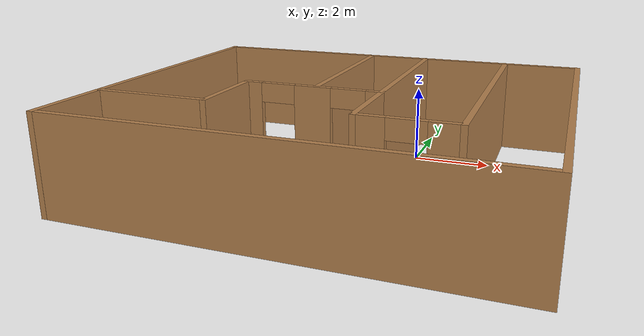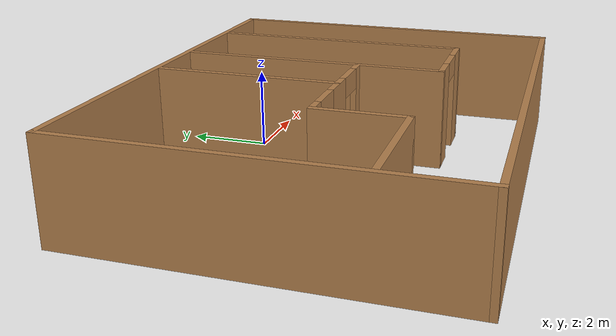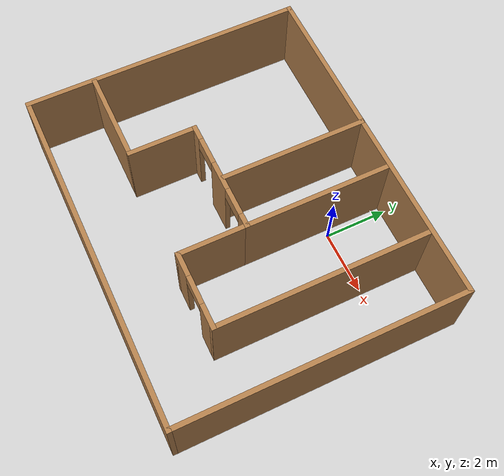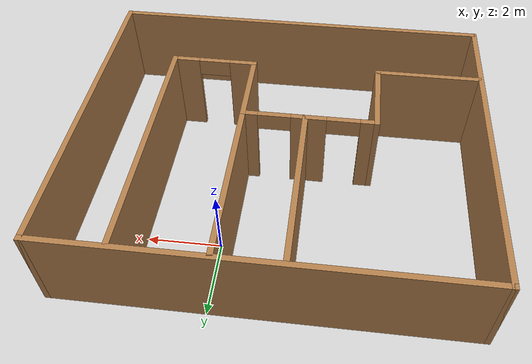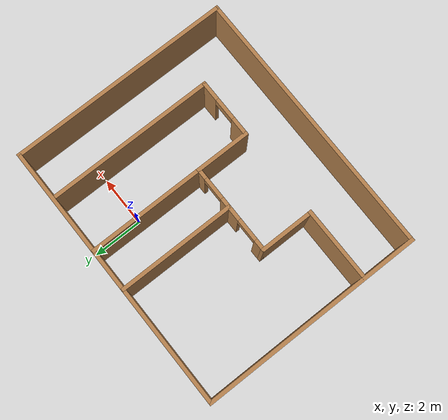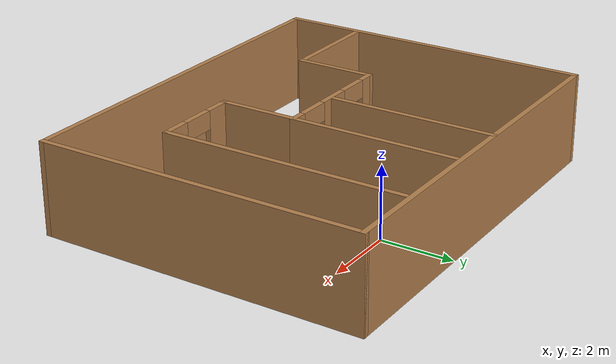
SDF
<?xml version='1.0'?>
<sdf version='1.6'>
  <model name='Building'>
    <pose frame=''>-1.36819 -2.47884 0 0 -0 0</pose>
    <link name='Wall_0'>
      <collision name='Wall_0_Collision'>
        <geometry>
          <box>
            <size>9 0.15 2.5</size>
          </box>
        </geometry>
        <pose frame=''>0 0 1.25 0 -0 0</pose>
      </collision>
      <visual name='Wall_0_Visual'>
        <pose frame=''>0 0 1.25 0 -0 0</pose>
        <geometry>
          <box>
            <size>9 0.15 2.5</size>
          </box>
        </geometry>
        <material>
          <script>
            <uri>file://media/materials/scripts/gazebo.material</uri>
            <name>Gazebo/Wood</name>
          </script>
          <ambient>1 1 1 1</ambient>
        </material>
        <meta>
          <layer>0</layer>
        </meta>
      </visual>
      <pose frame=''>-5.425 0 0 0 -0 1.5708</pose>
    </link>
    <link name='Wall_1'>
      <collision name='Wall_1_Collision'>
        <geometry>
          <box>
            <size>11 0.15 2.5</size>
          </box>
        </geometry>
        <pose frame=''>0 0 1.25 0 -0 0</pose>
      </collision>
      <visual name='Wall_1_Visual'>
        <pose frame=''>0 0 1.25 0 -0 0</pose>
        <geometry>
          <box>
            <size>11 0.15 2.5</size>
          </box>
        </geometry>
        <material>
          <script>
            <uri>file://media/materials/scripts/gazebo.material</uri>
            <name>Gazebo/Wood</name>
          </script>
          <ambient>1 1 1 1</ambient>
        </material>
        <meta>
          <layer>0</layer>
        </meta>
      </visual>
      <pose frame=''>0 4.425 0 0 -0 0</pose>
    </link>
    <link name='Wall_10'>
      <collision name='Wall_10_Collision'>
        <geometry>
          <box>
            <size>4.75 0.15 2.5</size>
          </box>
        </geometry>
        <pose frame=''>0 0 1.25 0 -0 0</pose>
      </collision>
      <visual name='Wall_10_Visual'>
        <pose frame=''>0 0 1.25 0 -0 0</pose>
        <geometry>
          <box>
            <size>4.75 0.15 2.5</size>
          </box>
        </geometry>
        <material>
          <script>
            <uri>file://media/materials/scripts/gazebo.material</uri>
            <name>Gazebo/Wood</name>
          </script>
          <ambient>1 1 1 1</ambient>
        </material>
        <meta>
          <layer>0</layer>
        </meta>
      </visual>
      <pose frame=''>-0.594777 2.1053 0 0 -0 1.5708</pose>
    </link>
    <link name='Wall_12'>
      <collision name='Wall_12_Collision'>
        <geometry>
          <box>
            <size>2.25 0.15 2.5</size>
          </box>
        </geometry>
        <pose frame=''>0 0 1.25 0 -0 0</pose>
      </collision>
      <visual name='Wall_12_Visual'>
        <pose frame=''>0 0 1.25 0 -0 0</pose>
        <geometry>
          <box>
            <size>2.25 0.15 2.5</size>
          </box>
        </geometry>
        <material>
          <script>
            <uri>file://media/materials/scripts/gazebo.material</uri>
            <name>Gazebo/Wood</name>
          </script>
          <ambient>1 1 1 1</ambient>
        </material>
        <meta>
          <layer>0</layer>
        </meta>
      </visual>
      <pose frame=''>1.09379 -1.24611 0 0 0 -1.5708</pose>
    </link>
    <link name='Wall_13'>
      <pose frame=''>2.26879 -2.29611 0 0 -0 0</pose>
      <visual name='Wall_13_Visual_0'>
        <pose frame=''>-0.855155 0 1.25 0 -0 0</pose>
        <geometry>
          <box>
            <size>0.78969 0.15 2.5</size>
          </box>
        </geometry>
        <material>
          <script>
            <uri>file://media/materials/scripts/gazebo.material</uri>
            <name>Gazebo/Wood</name>
          </script>
          <ambient>1 1 1 1</ambient>
        </material>
        <meta>
          <layer>0</layer>
        </meta>
      </visual>
      <collision name='Wall_13_Collision_0'>
        <geometry>
          <box>
            <size>0.78969 0.15 2.5</size>
          </box>
        </geometry>
        <pose frame=''>-0.855155 0 1.25 0 -0 0</pose>
      </collision>
      <visual name='Wall_13_Visual_1'>
        <pose frame=''>0.844845 0 1.25 0 -0 0</pose>
        <geometry>
          <box>
            <size>0.81031 0.15 2.5</size>
          </box>
        </geometry>
        <material>
          <script>
            <uri>file://media/materials/scripts/gazebo.material</uri>
            <name>Gazebo/Wood</name>
          </script>
          <ambient>1 1 1 1</ambient>
        </material>
        <meta>
          <layer>0</layer>
        </meta>
      </visual>
      <collision name='Wall_13_Collision_1'>
        <geometry>
          <box>
            <size>0.81031 0.15 2.5</size>
          </box>
        </geometry>
        <pose frame=''>0.844845 0 1.25 0 -0 0</pose>
      </collision>
      <visual name='Wall_13_Visual_2'>
        <pose frame=''>-0.01031 0 2.25 0 -0 0</pose>
        <geometry>
          <box>
            <size>0.9 0.15 0.5</size>
          </box>
        </geometry>
        <material>
          <script>
            <uri>file://media/materials/scripts/gazebo.material</uri>
            <name>Gazebo/Wood</name>
          </script>
          <ambient>1 1 1 1</ambient>
        </material>
        <meta>
          <layer>0</layer>
        </meta>
      </visual>
      <collision name='Wall_13_Collision_2'>
        <geometry>
          <box>
            <size>0.9 0.15 0.5</size>
          </box>
        </geometry>
        <pose frame=''>-0.01031 0 2.25 0 -0 0</pose>
      </collision>
    </link>
    <link name='Wall_16'>
      <collision name='Wall_16_Collision'>
        <geometry>
          <box>
            <size>6.75 0.15 2.5</size>
          </box>
        </geometry>
        <pose frame=''>0 0 1.25 0 -0 0</pose>
      </collision>
      <visual name='Wall_16_Visual'>
        <pose frame=''>0 0 1.25 0 -0 0</pose>
        <geometry>
          <box>
            <size>6.75 0.15 2.5</size>
          </box>
        </geometry>
        <material>
          <script>
            <uri>file://media/materials/scripts/gazebo.material</uri>
            <name>Gazebo/Wood</name>
          </script>
          <ambient>1 1 1 1</ambient>
        </material>
        <meta>
          <layer>0</layer>
        </meta>
      </visual>
      <pose frame=''>3.44379 1.00389 0 0 -0 1.5708</pose>
    </link>
    <link name='Wall_2'>
      <collision name='Wall_2_Collision'>
        <geometry>
          <box>
            <size>9 0.15 2.5</size>
          </box>
        </geometry>
        <pose frame=''>0 0 1.25 0 -0 0</pose>
      </collision>
      <visual name='Wall_2_Visual'>
        <pose frame=''>0 0 1.25 0 -0 0</pose>
        <geometry>
          <box>
            <size>9 0.15 2.5</size>
          </box>
        </geometry>
        <material>
          <script>
            <uri>file://media/materials/scripts/gazebo.material</uri>
            <name>Gazebo/Wood</name>
          </script>
          <ambient>1 1 1 1</ambient>
        </material>
        <meta>
          <layer>0</layer>
        </meta>
      </visual>
      <pose frame=''>5.425 0 0 0 0 -1.5708</pose>
    </link>
    <link name='Wall_3'>
      <collision name='Wall_3_Collision'>
        <geometry>
          <box>
            <size>11 0.15 2.5</size>
          </box>
        </geometry>
        <pose frame=''>0 0 1.25 0 -0 0</pose>
      </collision>
      <visual name='Wall_3_Visual'>
        <pose frame=''>0 0 1.25 0 -0 0</pose>
        <geometry>
          <box>
            <size>11 0.15 2.5</size>
          </box>
        </geometry>
        <material>
          <script>
            <uri>file://media/materials/scripts/gazebo.material</uri>
            <name>Gazebo/Wood</name>
          </script>
          <ambient>1 1 1 1</ambient>
        </material>
        <meta>
          <layer>0</layer>
        </meta>
      </visual>
      <pose frame=''>0 -4.425 0 0 -0 3.14159</pose>
    </link>
    <link name='Wall_5'>
      <collision name='Wall_5_Collision'>
        <geometry>
          <box>
            <size>3 0.15 2.5</size>
          </box>
        </geometry>
        <pose frame=''>0 0 1.25 0 -0 0</pose>
      </collision>
      <visual name='Wall_5_Visual'>
        <pose frame=''>0 0 1.25 0 -0 0</pose>
        <geometry>
          <box>
            <size>3 0.15 2.5</size>
          </box>
        </geometry>
        <material>
          <script>
            <uri>file://media/materials/scripts/gazebo.material</uri>
            <name>Gazebo/Wood</name>
          </script>
          <ambient>1 1 1 1</ambient>
        </material>
        <meta>
          <layer>0</layer>
        </meta>
      </visual>
      <pose frame=''>-3.93121 -2.29611 0 0 -0 0</pose>
    </link>
    <link name='Wall_6'>
      <collision name='Wall_6_Collision'>
        <geometry>
          <box>
            <size>2.25 0.15 2.5</size>
          </box>
        </geometry>
        <pose frame=''>0 0 1.25 0 -0 0</pose>
      </collision>
      <visual name='Wall_6_Visual'>
        <pose frame=''>0 0 1.25 0 -0 0</pose>
        <geometry>
          <box>
            <size>2.25 0.15 2.5</size>
          </box>
        </geometry>
        <material>
          <script>
            <uri>file://media/materials/scripts/gazebo.material</uri>
            <name>Gazebo/Wood</name>
          </script>
          <ambient>1 1 1 1</ambient>
        </material>
        <meta>
          <layer>0</layer>
        </meta>
      </visual>
      <pose frame=''>-2.50621 -1.24611 0 0 -0 1.5708</pose>
    </link>
    <link name='Wall_7'>
      <pose frame=''>-0.706213 -0.196114 0 0 -0 0</pose>
      <visual name='Wall_7_Visual_0'>
        <pose frame=''>-1.61914 0 1.25 0 -0 0</pose>
        <geometry>
          <box>
            <size>0.511721 0.15 2.5</size>
          </box>
        </geometry>
        <material>
          <script>
            <uri>file://media/materials/scripts/gazebo.material</uri>
            <name>Gazebo/Wood</name>
          </script>
          <ambient>1 1 1 1</ambient>
        </material>
        <meta>
          <layer>0</layer>
        </meta>
      </visual>
      <collision name='Wall_7_Collision_0'>
        <geometry>
          <box>
            <size>0.511721 0.15 2.5</size>
          </box>
        </geometry>
        <pose frame=''>-1.61914 0 1.25 0 -0 0</pose>
      </collision>
      <visual name='Wall_7_Visual_1'>
        <pose frame=''>0.018958 0 1.25 0 -0 0</pose>
        <geometry>
          <box>
            <size>0.964474 0.15 2.5</size>
          </box>
        </geometry>
        <material>
          <script>
            <uri>file://media/materials/scripts/gazebo.material</uri>
            <name>Gazebo/Wood</name>
          </script>
          <ambient>1 1 1 1</ambient>
        </material>
        <meta>
          <layer>0</layer>
        </meta>
      </visual>
      <collision name='Wall_7_Collision_1'>
        <geometry>
          <box>
            <size>0.964474 0.15 2.5</size>
          </box>
        </geometry>
        <pose frame=''>0.018958 0 1.25 0 -0 0</pose>
      </collision>
      <visual name='Wall_7_Visual_2'>
        <pose frame=''>1.6381 0 1.25 0 -0 0</pose>
        <geometry>
          <box>
            <size>0.473805 0.15 2.5</size>
          </box>
        </geometry>
        <material>
          <script>
            <uri>file://media/materials/scripts/gazebo.material</uri>
            <name>Gazebo/Wood</name>
          </script>
          <ambient>1 1 1 1</ambient>
        </material>
        <meta>
          <layer>0</layer>
        </meta>
      </visual>
      <collision name='Wall_7_Collision_2'>
        <geometry>
          <box>
            <size>0.473805 0.15 2.5</size>
          </box>
        </geometry>
        <pose frame=''>1.6381 0 1.25 0 -0 0</pose>
      </collision>
      <visual name='Wall_7_Visual_3'>
        <pose frame=''>-0.913279 0 2.25 0 -0 0</pose>
        <geometry>
          <box>
            <size>0.9 0.15 0.5</size>
          </box>
        </geometry>
        <material>
          <script>
            <uri>file://media/materials/scripts/gazebo.material</uri>
            <name>Gazebo/Wood</name>
          </script>
          <ambient>1 1 1 1</ambient>
        </material>
        <meta>
          <layer>0</layer>
        </meta>
      </visual>
      <collision name='Wall_7_Collision_3'>
        <geometry>
          <box>
            <size>0.9 0.15 0.5</size>
          </box>
        </geometry>
        <pose frame=''>-0.913279 0 2.25 0 -0 0</pose>
      </collision>
      <visual name='Wall_7_Visual_4'>
        <pose frame=''>0.951195 0 2.25 0 -0 0</pose>
        <geometry>
          <box>
            <size>0.9 0.15 0.5</size>
          </box>
        </geometry>
        <material>
          <script>
            <uri>file://media/materials/scripts/gazebo.material</uri>
            <name>Gazebo/Wood</name>
          </script>
          <ambient>1 1 1 1</ambient>
        </material>
        <meta>
          <layer>0</layer>
        </meta>
      </visual>
      <collision name='Wall_7_Collision_4'>
        <geometry>
          <box>
            <size>0.9 0.15 0.5</size>
          </box>
        </geometry>
        <pose frame=''>0.951195 0 2.25 0 -0 0</pose>
      </collision>
    </link>
    <link name='Wall_8'>
      <collision name='Wall_8_Collision'>
        <geometry>
          <box>
            <size>4.75 0.15 2.5</size>
          </box>
        </geometry>
        <pose frame=''>0 0 1.25 0 -0 0</pose>
      </collision>
      <visual name='Wall_8_Visual'>
        <pose frame=''>0 0 1.25 0 -0 0</pose>
        <geometry>
          <box>
            <size>4.75 0.15 2.5</size>
          </box>
        </geometry>
        <material>
          <script>
            <uri>file://media/materials/scripts/gazebo.material</uri>
            <name>Gazebo/Wood</name>
          </script>
          <ambient>1 1 1 1</ambient>
        </material>
        <meta>
          <layer>0</layer>
        </meta>
      </visual>
      <pose frame=''>1.09379 2.10389 0 0 -0 1.5708</pose>
    </link>
    <static>1</static>
  </model>
</sdf>
